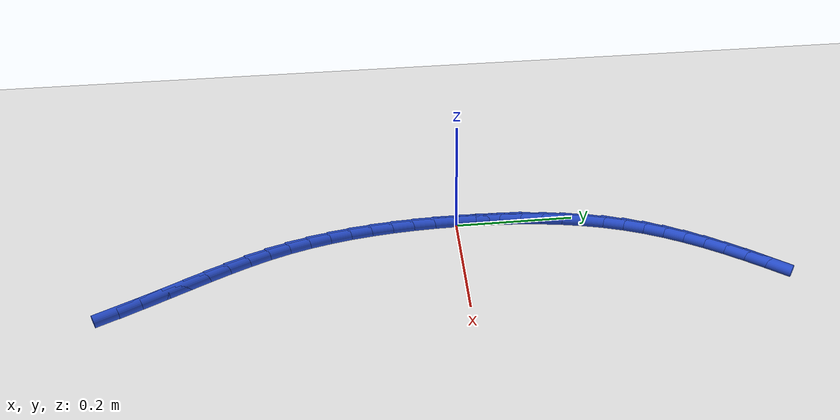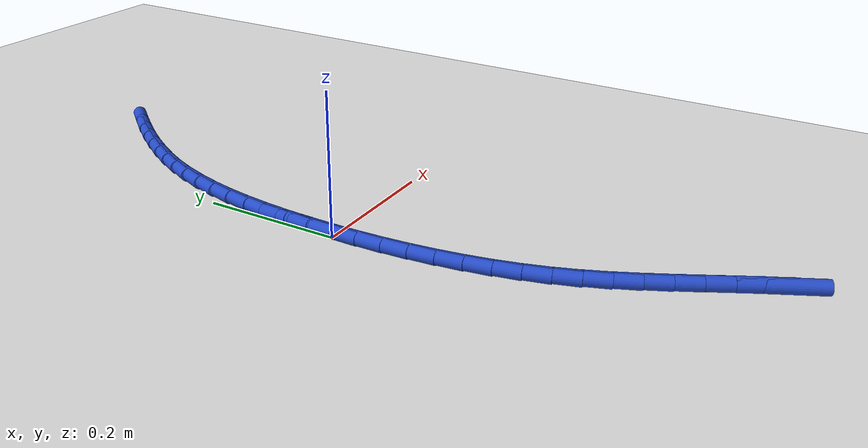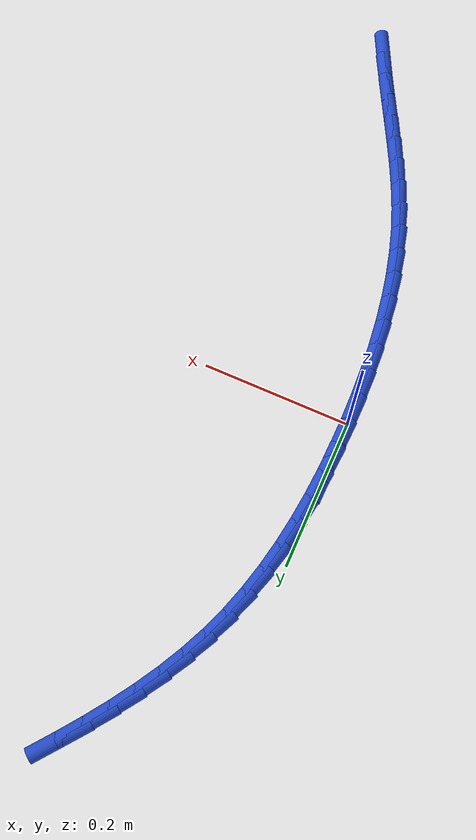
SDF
<sdf version="1.6">
 <world name="default">
  <model name="ground_plane">
   <static>1</static>
   <link name="link">
    <collision name="collision">
     <geometry><plane><normal>0 0 1</normal><size>100 100</size></plane></geometry>
     <surface><friction><ode><mu>100</mu><mu2>50</mu2></ode></friction></surface>
    </collision>
    <visual name="visual">
     <cast_shadows>0</cast_shadows>
     <geometry><plane><normal>0 0 1</normal><size>100 100</size></plane></geometry>
     <material>
      <script><uri>file://media/materials/scripts/gazebo.material</uri><name>Gazebo/WhiteGlow</name></script>
     </material>
    </visual>
   </link>
  </model>
  <model name="line">
   <link name="link_0">
    <pose>1.9081958235744878e-17 2.0816681711721685e-17 0.01 0 1.57 1.560972597169636</pose>
    <collision name="collision">
     <geometry><cylinder><radius>0.01</radius><length>0.08</length></cylinder></geometry>
    </collision>
    <visual name="visual">
     <material>
      <script><name>Gazebo/Blue</name><uri>file://media/materials/scripts/gazebo.material</uri></script>
     </material>
     <geometry><cylinder><radius>0.01</radius><length>0.08</length></cylinder></geometry>
    </visual>
   </link>
   <link name="link_1">
    <pose>0.00035940747973483385 0.036584467585218716 0.01 0 1.57 1.5313753869513596</pose>
    <collision name="collision">
     <geometry><cylinder><radius>0.01</radius><length>0.08</length></cylinder></geometry>
    </collision>
    <visual name="visual">
     <material>
      <script><name>Gazebo/Blue</name><uri>file://media/materials/scripts/gazebo.material</uri></script>
     </material>
     <geometry><cylinder><radius>0.01</radius><length>0.08</length></cylinder></geometry>
    </visual>
   </link>
   <link name="link_2">
    <pose>0.0017988519238332909 0.07308026741367317 0.01 0 1.57 1.4980727001369023</pose>
    <collision name="collision">
     <geometry><cylinder><radius>0.01</radius><length>0.08</length></cylinder></geometry>
    </collision>
    <visual name="visual">
     <material>
      <script><name>Gazebo/Blue</name><uri>file://media/materials/scripts/gazebo.material</uri></script>
     </material>
     <geometry><cylinder><radius>0.01</radius><length>0.08</length></cylinder></geometry>
    </visual>
   </link>
   <link name="link_3">
    <pose>0.004441334345571314 0.1093521427943838 0.01 0 1.57 1.46073816377099</pose>
    <collision name="collision">
     <geometry><cylinder><radius>0.01</radius><length>0.08</length></cylinder></geometry>
    </collision>
    <visual name="visual">
     <material>
      <script><name>Gazebo/Blue</name><uri>file://media/materials/scripts/gazebo.material</uri></script>
     </material>
     <geometry><cylinder><radius>0.01</radius><length>0.08</length></cylinder></geometry>
    </visual>
   </link>
   <link name="link_4">
    <pose>0.008409855758224838 0.1452648370363711 0.01 0 1.57 1.4190131943721014</pose>
    <collision name="collision">
     <geometry><cylinder><radius>0.01</radius><length>0.08</length></cylinder></geometry>
    </collision>
    <visual name="visual">
     <material>
      <script><name>Gazebo/Blue</name><uri>file://media/materials/scripts/gazebo.material</uri></script>
     </material>
     <geometry><cylinder><radius>0.01</radius><length>0.08</length></cylinder></geometry>
    </visual>
   </link>
   <link name="link_5">
    <pose>0.013827417175069794 0.18068309344865557 0.01 0 1.57 1.3725194973205543</pose>
    <collision name="collision">
     <geometry><cylinder><radius>0.01</radius><length>0.08</length></cylinder></geometry>
    </collision>
    <visual name="visual">
     <material>
      <script><name>Gazebo/Blue</name><uri>file://media/materials/scripts/gazebo.material</uri></script>
     </material>
     <geometry><cylinder><radius>0.01</radius><length>0.08</length></cylinder></geometry>
    </visual>
   </link>
   <link name="link_6">
    <pose>0.020817019609382113 0.21547165534025764 0.01 0 1.57 1.3208793719418424</pose>
    <collision name="collision">
     <geometry><cylinder><radius>0.01</radius><length>0.08</length></cylinder></geometry>
    </collision>
    <visual name="visual">
     <material>
      <script><name>Gazebo/Blue</name><uri>file://media/materials/scripts/gazebo.material</uri></script>
     </material>
     <geometry><cylinder><radius>0.01</radius><length>0.08</length></cylinder></geometry>
    </visual>
   </link>
   <link name="link_7">
    <pose>0.029501664074437724 0.24949526602019778 0.01 0 1.57 1.2637466125806822</pose>
    <collision name="collision">
     <geometry><cylinder><radius>0.01</radius><length>0.08</length></cylinder></geometry>
    </collision>
    <visual name="visual">
     <material>
      <script><name>Gazebo/Blue</name><uri>file://media/materials/scripts/gazebo.material</uri></script>
     </material>
     <geometry><cylinder><radius>0.01</radius><length>0.08</length></cylinder></geometry>
    </visual>
   </link>
   <link name="link_8">
    <pose>0.04000435158351255 0.2826186687974965 0.01 0 1.57 1.2012964142819578</pose>
    <collision name="collision">
     <geometry><cylinder><radius>0.01</radius><length>0.08</length></cylinder></geometry>
    </collision>
    <visual name="visual">
     <material>
      <script><name>Gazebo/Blue</name><uri>file://media/materials/scripts/gazebo.material</uri></script>
     </material>
     <geometry><cylinder><radius>0.01</radius><length>0.08</length></cylinder></geometry>
    </visual>
   </link>
   <link name="link_9">
    <pose>0.05243583653621312 0.314717485289717 0.01 0 1.57 1.1396415072065778</pose>
    <collision name="collision">
     <geometry><cylinder><radius>0.01</radius><length>0.08</length></cylinder></geometry>
    </collision>
    <visual name="visual">
     <material>
      <script><name>Gazebo/Blue</name><uri>file://media/materials/scripts/gazebo.material</uri></script>
     </material>
     <geometry><cylinder><radius>0.01</radius><length>0.08</length></cylinder></geometry>
    </visual>
   </link>
   <link name="link_10">
    <pose>0.06674110704488123 0.34581458245648605 0.01 0 1.57 1.0837987090909402</pose>
    <collision name="collision">
     <geometry><cylinder><radius>0.01</radius><length>0.08</length></cylinder></geometry>
    </collision>
    <visual name="visual">
     <material>
      <script><name>Gazebo/Blue</name><uri>file://media/materials/scripts/gazebo.material</uri></script>
     </material>
     <geometry><cylinder><radius>0.01</radius><length>0.08</length></cylinder></geometry>
    </visual>
   </link>
   <link name="link_11">
    <pose>0.08274593172097461 0.3760387264512773 0.01 0 1.57 1.034422966369488</pose>
    <collision name="collision">
     <geometry><cylinder><radius>0.01</radius><length>0.08</length></cylinder></geometry>
    </collision>
    <visual name="visual">
     <material>
      <script><name>Gazebo/Blue</name><uri>file://media/materials/scripts/gazebo.material</uri></script>
     </material>
     <geometry><cylinder><radius>0.01</radius><length>0.08</length></cylinder></geometry>
    </visual>
   </link>
   <link name="link_12">
    <pose>0.10027346013421318 0.4055210098456968 0.01 0 1.57 0.9918226974642906</pose>
    <collision name="collision">
     <geometry><cylinder><radius>0.01</radius><length>0.08</length></cylinder></geometry>
    </collision>
    <visual name="visual">
     <material>
      <script><name>Gazebo/Blue</name><uri>file://media/materials/scripts/gazebo.material</uri></script>
     </material>
     <geometry><cylinder><radius>0.01</radius><length>0.08</length></cylinder></geometry>
    </visual>
   </link>
   <link name="link_13">
    <pose>0.11914684185431697 0.43439252521135124 0.01 0 1.57 0.9561078494160984</pose>
    <collision name="collision">
     <geometry><cylinder><radius>0.01</radius><length>0.08</length></cylinder></geometry>
    </collision>
    <visual name="visual">
     <material>
      <script><name>Gazebo/Blue</name><uri>file://media/materials/scripts/gazebo.material</uri></script>
     </material>
     <geometry><cylinder><radius>0.01</radius><length>0.08</length></cylinder></geometry>
    </visual>
   </link>
   <link name="link_14">
    <pose>0.13918922645100593 0.46278436511984716 0.01 0 1.57 0.9272474243927474</pose>
    <collision name="collision">
     <geometry><cylinder><radius>0.01</radius><length>0.08</length></cylinder></geometry>
    </collision>
    <visual name="visual">
     <material>
      <script><name>Gazebo/Blue</name><uri>file://media/materials/scripts/gazebo.material</uri></script>
     </material>
     <geometry><cylinder><radius>0.01</radius><length>0.08</length></cylinder></geometry>
    </visual>
   </link>
   <link name="link_15">
    <pose>0.16022376349399997 0.4908276221427911 0.01 0 1.57 0.9051218732307043</pose>
    <collision name="collision">
     <geometry><cylinder><radius>0.01</radius><length>0.08</length></cylinder></geometry>
    </collision>
    <visual name="visual">
     <material>
      <script><name>Gazebo/Blue</name><uri>file://media/materials/scripts/gazebo.material</uri></script>
     </material>
     <geometry><cylinder><radius>0.01</radius><length>0.08</length></cylinder></geometry>
    </visual>
   </link>
   <link name="link_194">
    <pose>0.1618780053650736 -0.5376965109591382 0.01 0 1.57 -1.1124669596748882</pose>
    <collision name="collision">
     <geometry><cylinder><radius>0.01</radius><length>0.08</length></cylinder></geometry>
    </collision>
    <visual name="visual">
     <material>
      <script><name>Gazebo/Blue</name><uri>file://media/materials/scripts/gazebo.material</uri></script>
     </material>
     <geometry><cylinder><radius>0.01</radius><length>0.08</length></cylinder></geometry>
    </visual>
   </link>
   <link name="link_195">
    <pose>0.1454941916864753 -0.504488530218349 0.01 0 1.57 -1.0940140004546834</pose>
    <collision name="collision">
     <geometry><cylinder><radius>0.01</radius><length>0.08</length></cylinder></geometry>
    </collision>
    <visual name="visual">
     <material>
      <script><name>Gazebo/Blue</name><uri>file://media/materials/scripts/gazebo.material</uri></script>
     </material>
     <geometry><cylinder><radius>0.01</radius><length>0.08</length></cylinder></geometry>
    </visual>
   </link>
   <link name="link_196">
    <pose>0.12881838510098836 -0.4722041040490374 0.01 0 1.57 -1.0862324999653803</pose>
    <collision name="collision">
     <geometry><cylinder><radius>0.01</radius><length>0.08</length></cylinder></geometry>
    </collision>
    <visual name="visual">
     <material>
      <script><name>Gazebo/Blue</name><uri>file://media/materials/scripts/gazebo.material</uri></script>
     </material>
     <geometry><cylinder><radius>0.01</radius><length>0.08</length></cylinder></geometry>
    </visual>
   </link>
   <link name="link_197">
    <pose>0.1121643614169661 -0.4405680527805195 0.01 0 1.57 -1.0897227660868631</pose>
    <collision name="collision">
     <geometry><cylinder><radius>0.01</radius><length>0.08</length></cylinder></geometry>
    </collision>
    <visual name="visual">
     <material>
      <script><name>Gazebo/Blue</name><uri>file://media/materials/scripts/gazebo.material</uri></script>
     </material>
     <geometry><cylinder><radius>0.01</radius><length>0.08</length></cylinder></geometry>
    </visual>
   </link>
   <link name="link_198">
    <pose>0.09584589644276073 -0.4093051967421102 0.01 0 1.57 -1.1049253486916457</pose>
    <collision name="collision">
     <geometry><cylinder><radius>0.01</radius><length>0.08</length></cylinder></geometry>
    </collision>
    <visual name="visual">
     <material>
      <script><name>Gazebo/Blue</name><uri>file://media/materials/scripts/gazebo.material</uri></script>
     </material>
     <geometry><cylinder><radius>0.01</radius><length>0.08</length></cylinder></geometry>
    </visual>
   </link>
   <link name="link_199">
    <pose>0.08017676598672477 -0.37814035626312414 0.01 0 1.57 -1.132081702167992</pose>
    <collision name="collision">
     <geometry><cylinder><radius>0.01</radius><length>0.08</length></cylinder></geometry>
    </collision>
    <visual name="visual">
     <material>
      <script><name>Gazebo/Blue</name><uri>file://media/materials/scripts/gazebo.material</uri></script>
     </material>
     <geometry><cylinder><radius>0.01</radius><length>0.08</length></cylinder></geometry>
    </visual>
   </link>
   <link name="link_200">
    <pose>0.06547074585721074 -0.34679835167287654 0.01 0 1.57 -1.1711512813472909</pose>
    <collision name="collision">
     <geometry><cylinder><radius>0.01</radius><length>0.08</length></cylinder></geometry>
    </collision>
    <visual name="visual">
     <material>
      <script><name>Gazebo/Blue</name><uri>file://media/materials/scripts/gazebo.material</uri></script>
     </material>
     <geometry><cylinder><radius>0.01</radius><length>0.08</length></cylinder></geometry>
    </visual>
   </link>
   <link name="link_201">
    <pose>0.052041611862571224 -0.3150040033006823 0.01 0 1.57 -1.2215598546140904</pose>
    <collision name="collision">
     <geometry><cylinder><radius>0.01</radius><length>0.08</length></cylinder></geometry>
    </collision>
    <visual name="visual">
     <material>
      <script><name>Gazebo/Blue</name><uri>file://media/materials/scripts/gazebo.material</uri></script>
     </material>
     <geometry><cylinder><radius>0.01</radius><length>0.08</length></cylinder></geometry>
    </visual>
   </link>
   <link name="link_202">
    <pose>0.040199533463427244 -0.2824854248590285 0.01 0 1.57 -1.2766035929332709</pose>
    <collision name="collision">
     <geometry><cylinder><radius>0.01</radius><length>0.08</length></cylinder></geometry>
    </collision>
    <visual name="visual">
     <material>
      <script><name>Gazebo/Blue</name><uri>file://media/materials/scripts/gazebo.material</uri></script>
     </material>
     <geometry><cylinder><radius>0.01</radius><length>0.08</length></cylinder></geometry>
    </visual>
   </link>
   <link name="link_203">
    <pose>0.030090518178904853 -0.2491206457690382 0.01 0 1.57 -1.327830008132331</pose>
    <collision name="collision">
     <geometry><cylinder><radius>0.01</radius><length>0.08</length></cylinder></geometry>
    </collision>
    <visual name="visual">
     <material>
      <script><name>Gazebo/Blue</name><uri>file://media/materials/scripts/gazebo.material</uri></script>
     </material>
     <geometry><cylinder><radius>0.01</radius><length>0.08</length></cylinder></geometry>
    </visual>
   </link>
   <link name="link_204">
    <pose>0.02163231795458498 -0.2149961426457788 0.01 0 1.57 -1.3747826419914444</pose>
    <collision name="collision">
     <geometry><cylinder><radius>0.01</radius><length>0.08</length></cylinder></geometry>
    </collision>
    <visual name="visual">
     <material>
      <script><name>Gazebo/Blue</name><uri>file://media/materials/scripts/gazebo.material</uri></script>
     </material>
     <geometry><cylinder><radius>0.01</radius><length>0.08</length></cylinder></geometry>
    </visual>
   </link>
   <link name="link_205">
    <pose>0.014725821489165498 -0.1802137919319721 0.01 0 1.57 -1.41767048233316</pose>
    <collision name="collision">
     <geometry><cylinder><radius>0.01</radius><length>0.08</length></cylinder></geometry>
    </collision>
    <visual name="visual">
     <material>
      <script><name>Gazebo/Blue</name><uri>file://media/materials/scripts/gazebo.material</uri></script>
     </material>
     <geometry><cylinder><radius>0.01</radius><length>0.08</length></cylinder></geometry>
    </visual>
   </link>
   <link name="link_206">
    <pose>0.009271917481344302 -0.14487547007034016 0.01 0 1.57 -1.4567323760185402</pose>
    <collision name="collision">
     <geometry><cylinder><radius>0.01</radius><length>0.08</length></cylinder></geometry>
    </collision>
    <visual name="visual">
     <material>
      <script><name>Gazebo/Blue</name><uri>file://media/materials/scripts/gazebo.material</uri></script>
     </material>
     <geometry><cylinder><radius>0.01</radius><length>0.08</length></cylinder></geometry>
    </visual>
   </link>
   <link name="link_207">
    <pose>0.005171494629819274 -0.10908305350360499 0.01 0 1.57 -1.4922177808368953</pose>
    <collision name="collision">
     <geometry><cylinder><radius>0.01</radius><length>0.08</length></cylinder></geometry>
    </collision>
    <visual name="visual">
     <material>
      <script><name>Gazebo/Blue</name><uri>file://media/materials/scripts/gazebo.material</uri></script>
     </material>
     <geometry><cylinder><radius>0.01</radius><length>0.08</length></cylinder></geometry>
    </visual>
   </link>
   <link name="link_208">
    <pose>0.002325441633288295 -0.07293841867448861 0.01 0 1.57 -1.5243728971385877</pose>
    <collision name="collision">
     <geometry><cylinder><radius>0.01</radius><length>0.08</length></cylinder></geometry>
    </collision>
    <visual name="visual">
     <material>
      <script><name>Gazebo/Blue</name><uri>file://media/materials/scripts/gazebo.material</uri></script>
     </material>
     <geometry><cylinder><radius>0.01</radius><length>0.08</length></cylinder></geometry>
    </visual>
   </link>
   <link name="link_209">
    <pose>0.0006346471904492244 -0.03654344202571212 0.01 0 1.57 -1.5534311482158965</pose>
    <collision name="collision">
     <geometry><cylinder><radius>0.01</radius><length>0.08</length></cylinder></geometry>
    </collision>
    <visual name="visual">
     <material>
      <script><name>Gazebo/Blue</name><uri>file://media/materials/scripts/gazebo.material</uri></script>
     </material>
     <geometry><cylinder><radius>0.01</radius><length>0.08</length></cylinder></geometry>
    </visual>
   </link>
   <link name="link_210">
    <pose>2.2551405187698492e-17 -9.020562075079397e-17 0.01 0 1.57 1.5619857188196162</pose>
    <collision name="collision">
     <geometry><cylinder><radius>0.01</radius><length>0.08</length></cylinder></geometry>
    </collision>
    <visual name="visual">
     <material>
      <script><name>Gazebo/Blue</name><uri>file://media/materials/scripts/gazebo.material</uri></script>
     </material>
     <geometry><cylinder><radius>0.01</radius><length>0.08</length></cylinder></geometry>
    </visual>
   </link>
   <link name="link_211">
    <pose>0.00032238876063849214 0.03659003095992804 0.01 0 1.57 1.5385009575549686</pose>
    <collision name="collision">
     <geometry><cylinder><radius>0.01</radius><length>0.08</length></cylinder></geometry>
    </collision>
    <visual name="visual">
     <material>
      <script><name>Gazebo/Blue</name><uri>file://media/materials/scripts/gazebo.material</uri></script>
     </material>
     <geometry><cylinder><radius>0.01</radius><length>0.08</length></cylinder></geometry>
    </visual>
   </link>
   <link name="link_212">
    <pose>0.0015027021710626197 0.07312477441135118 0.01 0 1.57 1.5502493820901455</pose>
    <collision name="collision">
     <geometry><cylinder><radius>0.01</radius><length>0.08</length></cylinder></geometry>
    </collision>
    <visual name="visual">
     <material>
      <script><name>Gazebo/Blue</name><uri>file://media/materials/scripts/gazebo.material</uri></script>
     </material>
     <geometry><cylinder><radius>0.01</radius><length>0.08</length></cylinder></geometry>
    </visual>
   </link>
  </model>
 </world>
</sdf>
